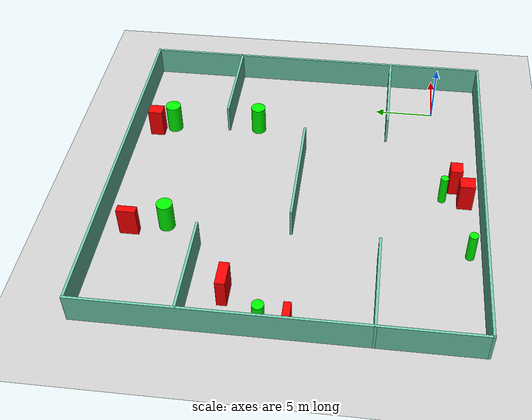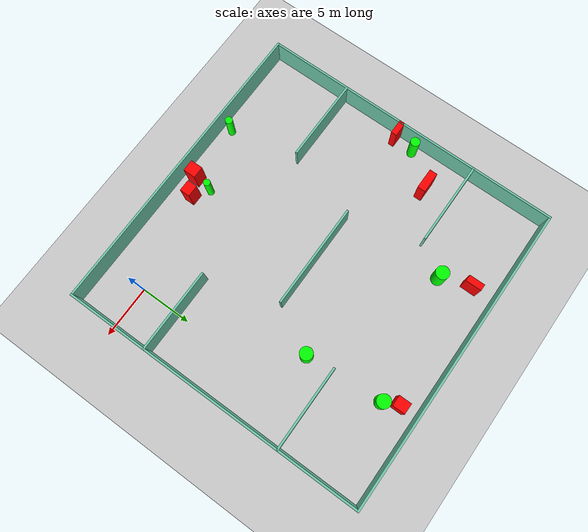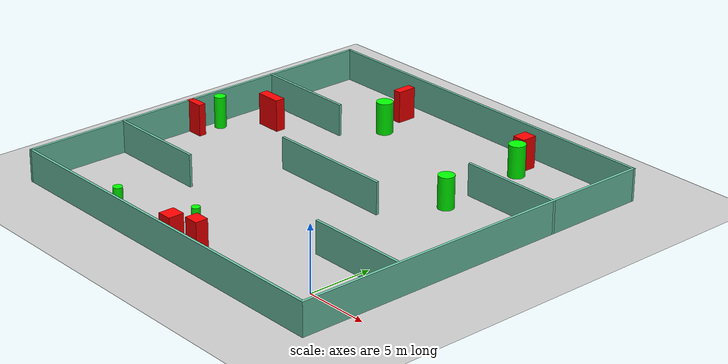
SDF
<sdf version="1.7">
 <world name="default">
  <light name="sun" type="directional">
   <pose>0 0 10 0 -0 0</pose>
   <diffuse>0.8 0.8 0.8 1</diffuse>
   <specular>0.2 0.2 0.2 1</specular>
   <attenuation>
    <range>1000</range>
    <constant>0.9</constant>
    <linear>0.01</linear>
    <quadratic>0.001</quadratic>
   </attenuation>
   <direction>-0.5 0.1 -0.9</direction>
   <spot><inner_angle>0</inner_angle><outer_angle>0</outer_angle><falloff>0</falloff></spot>
  </light>
  <model name="ground_plane">
   <static>1</static>
   <link name="link">
    <collision name="collision">
     <geometry><plane><normal>0 0 1</normal><size>100 100</size></plane></geometry>
     <surface>
      <contact><collide_bitmask>65535</collide_bitmask></contact>
      <friction><ode><mu>100</mu><mu2>50</mu2></ode></friction>
     </surface>
    </collision>
    <visual name="visual">
     <cast_shadows>0</cast_shadows>
     <geometry><plane><normal>0 0 1</normal><size>100 100</size></plane></geometry>
     <material>
      <script><uri>file://media/materials/scripts/gazebo.material</uri><name>Gazebo/Grey</name></script>
     </material>
    </visual>
   </link>
  </model>
  <gravity>0 0 -9.8</gravity>
  <magnetic_field>6e-06 2.3e-05 -4.2e-05</magnetic_field>
  <atmosphere type="adiabatic"/>
  <physics type="ode">
   <max_step_size>0.001</max_step_size>
   <real_time_factor>1</real_time_factor>
   <real_time_update_rate>1000</real_time_update_rate>
  </physics>
  <scene><ambient>0.4 0.4 0.4 1</ambient><background>0.7 0.7 0.7 1</background><shadows>1</shadows></scene>
  <spherical_coordinates>
   <surface_model>EARTH_WGS84</surface_model>
   <latitude_deg>0</latitude_deg>
   <longitude_deg>0</longitude_deg>
   <elevation>0</elevation>
   <heading_deg>0</heading_deg>
  </spherical_coordinates>
  <model name="my_base_walls">
   <link name="Wall_10">
    <collision name="Wall_10_Collision">
     <geometry><box><size>8.2 0.2 2.5</size></box></geometry>
     <pose>0 0 1.25 0 -0 0</pose>
    </collision>
    <visual name="Wall_10_Visual">
     <pose>0 0 1.25 0 -0 0</pose>
     <geometry><box><size>8.2 0.2 2.5</size></box></geometry>
     <material>
      <script><uri>file://media/materials/scripts/gazebo.material</uri><name>Gazebo/Grey</name></script>
      <ambient>0.435294 0.796078 0.67451 1</ambient>
     </material>
     <meta><layer>0</layer></meta>
    </visual>
    <pose>-11 -7 0 0 -0 0</pose>
   </link>
   <link name="Wall_12">
    <collision name="Wall_12_Collision">
     <geometry><box><size>8.2 0.2 2.5</size></box></geometry>
     <pose>0 0 1.25 0 -0 0</pose>
    </collision>
    <visual name="Wall_12_Visual">
     <pose>0 0 1.25 0 -0 0</pose>
     <geometry><box><size>8.2 0.2 2.5</size></box></geometry>
     <material>
      <script><uri>file://media/materials/scripts/gazebo.material</uri><name>Gazebo/Grey</name></script>
      <ambient>0.435294 0.796078 0.67451 1</ambient>
     </material>
     <meta><layer>0</layer></meta>
    </visual>
    <pose>-11 7 0 0 -0 0</pose>
   </link>
   <link name="Wall_14">
    <collision name="Wall_14_Collision">
     <geometry><box><size>8.2 0.2 2.5</size></box></geometry>
     <pose>0 0 1.25 0 -0 0</pose>
    </collision>
    <visual name="Wall_14_Visual">
     <pose>0 0 1.25 0 -0 0</pose>
     <geometry><box><size>8.2 0.2 2.5</size></box></geometry>
     <material>
      <script><uri>file://media/materials/scripts/gazebo.material</uri><name>Gazebo/Grey</name></script>
      <ambient>0.435294 0.796078 0.67451 1</ambient>
     </material>
     <meta><layer>0</layer></meta>
    </visual>
    <pose>11 7 0 0 -0 3.14159</pose>
   </link>
   <link name="Wall_16">
    <collision name="Wall_16_Collision">
     <geometry><box><size>10.2 0.2 2.5</size></box></geometry>
     <pose>0 0 1.25 0 -0 0</pose>
    </collision>
    <visual name="Wall_16_Visual">
     <pose>0 0 1.25 0 -0 0</pose>
     <geometry><box><size>10.2 0.2 2.5</size></box></geometry>
     <material>
      <script><uri>file://media/materials/scripts/gazebo.material</uri><name>Gazebo/Grey</name></script>
      <ambient>0.435294 0.796078 0.67451 1</ambient>
     </material>
     <meta><layer>0</layer></meta>
    </visual>
    <pose>0 0 0 0 -0 3.14159</pose>
   </link>
   <link name="Wall_2">
    <collision name="Wall_2_Collision">
     <geometry><box><size>30.2 0.2 2.5</size></box></geometry>
     <pose>0 0 1.25 0 -0 0</pose>
    </collision>
    <visual name="Wall_2_Visual">
     <pose>0 0 1.25 0 -0 0</pose>
     <geometry><box><size>30.2 0.2 2.5</size></box></geometry>
     <material>
      <script><uri>file://media/materials/scripts/gazebo.material</uri><name>Gazebo/Grey</name></script>
      <ambient>0.435294 0.796078 0.67451 1</ambient>
     </material>
     <meta><layer>0</layer></meta>
    </visual>
    <pose>0 -15 0 0 -0 3.14159</pose>
   </link>
   <link name="Wall_3">
    <collision name="Wall_3_Collision">
     <geometry><box><size>30.2 0.2 2.5</size></box></geometry>
     <pose>0 0 1.25 0 -0 0</pose>
    </collision>
    <visual name="Wall_3_Visual">
     <pose>0 0 1.25 0 -0 0</pose>
     <geometry><box><size>30.2 0.2 2.5</size></box></geometry>
     <material>
      <script><uri>file://media/materials/scripts/gazebo.material</uri><name>Gazebo/Grey</name></script>
      <ambient>0.435294 0.796078 0.67451 1</ambient>
     </material>
     <meta><layer>0</layer></meta>
    </visual>
    <pose>-15 0 0 0 -0 1.5708</pose>
   </link>
   <link name="Wall_4">
    <collision name="Wall_4_Collision">
     <geometry><box><size>30.2 0.2 2.5</size></box></geometry>
     <pose>0 0 1.25 0 -0 0</pose>
    </collision>
    <visual name="Wall_4_Visual">
     <pose>0 0 1.25 0 -0 0</pose>
     <geometry><box><size>30.2 0.2 2.5</size></box></geometry>
     <material>
      <script><uri>file://media/materials/scripts/gazebo.material</uri><name>Gazebo/Grey</name></script>
      <ambient>0.435294 0.796078 0.67451 1</ambient>
     </material>
     <meta><layer>0</layer></meta>
    </visual>
    <pose>0 15 0 0 -0 0</pose>
   </link>
   <link name="Wall_6">
    <collision name="Wall_6_Collision">
     <geometry><box><size>30.2 0.2 2.5</size></box></geometry>
     <pose>0 0 1.25 0 -0 0</pose>
    </collision>
    <visual name="Wall_6_Visual">
     <pose>0 0 1.25 0 -0 0</pose>
     <geometry><box><size>30.2 0.2 2.5</size></box></geometry>
     <material>
      <script><uri>file://media/materials/scripts/gazebo.material</uri><name>Gazebo/Grey</name></script>
      <ambient>0.435294 0.796078 0.67451 1</ambient>
     </material>
     <meta><layer>0</layer></meta>
    </visual>
    <pose>15 0 0 0 -0 1.5708</pose>
   </link>
   <link name="Wall_8">
    <collision name="Wall_8_Collision">
     <geometry><box><size>8.2 0.2 2.5</size></box></geometry>
     <pose>0 0 1.25 0 -0 0</pose>
    </collision>
    <visual name="Wall_8_Visual">
     <pose>0 0 1.25 0 -0 0</pose>
     <geometry><box><size>8.2 0.2 2.5</size></box></geometry>
     <material>
      <script><uri>file://media/materials/scripts/gazebo.material</uri><name>Gazebo/Grey</name></script>
      <ambient>0.435294 0.796078 0.67451 1</ambient>
     </material>
     <meta><layer>0</layer></meta>
    </visual>
    <pose>11 -7 0 0 -0 3.14159</pose>
   </link>
   <static>1</static>
   <pose>-11 11 0 0 -0 0</pose>
  </model>
  <model name="cylinder1">
   <static>1</static>
   <link name="link">
    <inertial>
     <mass>1</mass>
     <inertia><ixx>0.5</ixx><ixy>0</ixy><ixz>0</ixz><iyy>0.5</iyy><iyz>0</iyz><izz>1</izz></inertia>
    </inertial>
    <collision name="collision">
     <geometry><cylinder><radius>0.6142097254028575</radius><length>2.5</length></cylinder></geometry>
    </collision>
    <visual name="visual">
     <geometry><cylinder><radius>0.6142097254028575</radius><length>2.5</length></cylinder></geometry>
     <material>
      <ambient>0 1 0 1</ambient>
      <diffuse>0 1 0 1</diffuse>
      <specular>0.1 0.1 0.1 1</specular>
      <emissive>0 0 0 0</emissive>
     </material>
    </visual>
   </link>
   <pose>-3.671840990954397 15.384343778169125 1.25 0 0 0</pose>
  </model>
  <model name="cylinder2">
   <static>1</static>
   <link name="link">
    <inertial>
     <mass>1</mass>
     <inertia><ixx>0.5</ixx><ixy>0</ixy><ixz>0</ixz><iyy>0.5</iyy><iyz>0</iyz><izz>1</izz></inertia>
    </inertial>
    <collision name="collision">
     <geometry><cylinder><radius>0.6430790377499851</radius><length>2.5</length></cylinder></geometry>
    </collision>
    <visual name="visual">
     <geometry><cylinder><radius>0.6430790377499851</radius><length>2.5</length></cylinder></geometry>
     <material>
      <ambient>0 1 0 1</ambient>
      <diffuse>0 1 0 1</diffuse>
      <specular>0.1 0.1 0.1 1</specular>
      <emissive>0 0 0 0</emissive>
     </material>
    </visual>
   </link>
   <pose>-4.221877090666476 22.88683468147169 1.25 0 0 0</pose>
  </model>
  <model name="cylinder3">
   <static>1</static>
   <link name="link">
    <inertial>
     <mass>1</mass>
     <inertia><ixx>0.5</ixx><ixy>0</ixy><ixz>0</ixz><iyy>0.5</iyy><iyz>0</iyz><izz>1</izz></inertia>
    </inertial>
    <collision name="collision">
     <geometry><cylinder><radius>0.6416819682647442</radius><length>2.5</length></cylinder></geometry>
    </collision>
    <visual name="visual">
     <geometry><cylinder><radius>0.6416819682647442</radius><length>2.5</length></cylinder></geometry>
     <material>
      <ambient>0 1 0 1</ambient>
      <diffuse>0 1 0 1</diffuse>
      <specular>0.1 0.1 0.1 1</specular>
      <emissive>0 0 0 0</emissive>
     </material>
    </visual>
   </link>
   <pose>-16.22473776811331 20.942790859387134 1.25 0 0 0</pose>
  </model>
  <model name="cylinder4">
   <static>1</static>
   <link name="link">
    <inertial>
     <mass>1</mass>
     <inertia><ixx>0.5</ixx><ixy>0</ixy><ixz>0</ixz><iyy>0.5</iyy><iyz>0</iyz><izz>1</izz></inertia>
    </inertial>
    <collision name="collision">
     <geometry><cylinder><radius>0.3233621973479145</radius><length>2.5</length></cylinder></geometry>
    </collision>
    <visual name="visual">
     <geometry><cylinder><radius>0.3233621973479145</radius><length>2.5</length></cylinder></geometry>
     <material>
      <ambient>0 1 0 1</ambient>
      <diffuse>0 1 0 1</diffuse>
      <specular>0.1 0.1 0.1 1</specular>
      <emissive>0 0 0 0</emissive>
     </material>
    </visual>
   </link>
   <pose>-10.878777451734074 -0.8603987183188613 1.25 0 0 0</pose>
  </model>
  <model name="cylinder5">
   <static>1</static>
   <link name="link">
    <inertial>
     <mass>1</mass>
     <inertia><ixx>0.5</ixx><ixy>0</ixy><ixz>0</ixz><iyy>0.5</iyy><iyz>0</iyz><izz>1</izz></inertia>
    </inertial>
    <collision name="collision">
     <geometry><cylinder><radius>0.45204444729740456</radius><length>2.5</length></cylinder></geometry>
    </collision>
    <visual name="visual">
     <geometry><cylinder><radius>0.45204444729740456</radius><length>2.5</length></cylinder></geometry>
     <material>
      <ambient>0 1 0 1</ambient>
      <diffuse>0 1 0 1</diffuse>
      <specular>0.1 0.1 0.1 1</specular>
      <emissive>0 0 0 0</emissive>
     </material>
    </visual>
   </link>
   <pose>-25.121650122160744 12.252030200067455 1.25 0 0 0</pose>
  </model>
  <model name="cylinder6">
   <static>1</static>
   <link name="link">
    <inertial>
     <mass>1</mass>
     <inertia><ixx>0.5</ixx><ixy>0</ixy><ixz>0</ixz><iyy>0.5</iyy><iyz>0</iyz><izz>1</izz></inertia>
    </inertial>
    <collision name="collision">
     <geometry><cylinder><radius>0.3520923288753518</radius><length>2.5</length></cylinder></geometry>
    </collision>
    <visual name="visual">
     <geometry><cylinder><radius>0.3520923288753518</radius><length>2.5</length></cylinder></geometry>
     <material>
      <ambient>0 1 0 1</ambient>
      <diffuse>0 1 0 1</diffuse>
      <specular>0.1 0.1 0.1 1</specular>
      <emissive>0 0 0 0</emissive>
     </material>
    </visual>
   </link>
   <pose>-16.899193841031135 -2.972078327391416 1.25 0 0 0</pose>
  </model>
  <model name="box1">
   <static>1</static>
   <link name="link">
    <inertial>
     <mass>1</mass>
     <inertia><ixx>0.083</ixx><ixy>0</ixy><ixz>0</ixz><iyy>0.083</iyy><iyz>0</iyz><izz>0.083</izz></inertia>
    </inertial>
    <collision name="collision">
     <geometry><box><size>1.152893078303775 0.9942733991887492 2.5</size></box></geometry>
    </collision>
    <visual name="visual">
     <geometry><box><size>1.152893078303775 0.9942733991887492 2.5</size></box></geometry>
     <material>
      <ambient>1 0 0 1</ambient>
      <diffuse>1 0 0 1</diffuse>
      <specular>0.1 0.1 0.1 1</specular>
      <emissive>0 0 0 0</emissive>
     </material>
    </visual>
    <sensor name="my_contact" type="contact">
     <contact><collision>box_collision</collision><topic>__default_topic__</topic></contact>
    </sensor>
   </link>
   <pose>-9.491411776049263 -1.8545953662624988 1.25 0 0 0</pose>
  </model>
  <model name="box2">
   <static>1</static>
   <link name="link">
    <inertial>
     <mass>1</mass>
     <inertia><ixx>0.083</ixx><ixy>0</ixy><ixz>0</ixz><iyy>0.083</iyy><iyz>0</iyz><izz>0.083</izz></inertia>
    </inertial>
    <collision name="collision">
     <geometry><box><size>2.041134297168144 0.775993382496937 2.5</size></box></geometry>
    </collision>
    <visual name="visual">
     <geometry><box><size>2.041134297168144 0.775993382496937 2.5</size></box></geometry>
     <material>
      <ambient>1 0 0 1</ambient>
      <diffuse>1 0 0 1</diffuse>
      <specular>0.1 0.1 0.1 1</specular>
      <emissive>0 0 0 0</emissive>
     </material>
    </visual>
    <sensor name="my_contact" type="contact">
     <contact><collision>box_collision</collision><topic>__default_topic__</topic></contact>
    </sensor>
   </link>
   <pose>-22.597629303321654 15.220730206431448 1.25 0 0 0</pose>
  </model>
  <model name="box3">
   <static>1</static>
   <link name="link">
    <inertial>
     <mass>1</mass>
     <inertia><ixx>0.083</ixx><ixy>0</ixy><ixz>0</ixz><iyy>0.083</iyy><iyz>0</iyz><izz>0.083</izz></inertia>
    </inertial>
    <collision name="collision">
     <geometry><box><size>1.1365282565431318 1.2150950150691389 2.5</size></box></geometry>
    </collision>
    <visual name="visual">
     <geometry><box><size>1.1365282565431318 1.2150950150691389 2.5</size></box></geometry>
     <material>
      <ambient>1 0 0 1</ambient>
      <diffuse>1 0 0 1</diffuse>
      <specular>0.1 0.1 0.1 1</specular>
      <emissive>0 0 0 0</emissive>
     </material>
    </visual>
    <sensor name="my_contact" type="contact">
     <contact><collision>box_collision</collision><topic>__default_topic__</topic></contact>
    </sensor>
   </link>
   <pose>-11.182445580007492 -2.681471443122923 1.25 0 0 0</pose>
  </model>
  <model name="box4">
   <static>1</static>
   <link name="link">
    <inertial>
     <mass>1</mass>
     <inertia><ixx>0.083</ixx><ixy>0</ixy><ixz>0</ixz><iyy>0.083</iyy><iyz>0</iyz><izz>0.083</izz></inertia>
    </inertial>
    <collision name="collision">
     <geometry><box><size>0.6291987340789706 1.5347902825996955 2.5</size></box></geometry>
    </collision>
    <visual name="visual">
     <geometry><box><size>0.6291987340789706 1.5347902825996955 2.5</size></box></geometry>
     <material>
      <ambient>1 0 0 1</ambient>
      <diffuse>1 0 0 1</diffuse>
      <specular>0.1 0.1 0.1 1</specular>
      <emissive>0 0 0 0</emissive>
     </material>
    </visual>
    <sensor name="my_contact" type="contact">
     <contact><collision>box_collision</collision><topic>__default_topic__</topic></contact>
    </sensor>
   </link>
   <pose>-17.113462159245373 23.73711201146316 1.25 0 0 0</pose>
  </model>
  <model name="box5">
   <static>1</static>
   <link name="link">
    <inertial>
     <mass>1</mass>
     <inertia><ixx>0.083</ixx><ixy>0</ixy><ixz>0</ixz><iyy>0.083</iyy><iyz>0</iyz><izz>0.083</izz></inertia>
    </inertial>
    <collision name="collision">
     <geometry><box><size>1.0389883576047043 1.2133238003838271 2.5</size></box></geometry>
    </collision>
    <visual name="visual">
     <geometry><box><size>1.0389883576047043 1.2133238003838271 2.5</size></box></geometry>
     <material>
      <ambient>1 0 0 1</ambient>
      <diffuse>1 0 0 1</diffuse>
      <specular>0.1 0.1 0.1 1</specular>
      <emissive>0 0 0 0</emissive>
     </material>
    </visual>
    <sensor name="my_contact" type="contact">
     <contact><collision>box_collision</collision><topic>__default_topic__</topic></contact>
    </sensor>
   </link>
   <pose>-4.87341241468468 24.265028204654595 1.25 0 0 0</pose>
  </model>
  <model name="box6">
   <static>1</static>
   <link name="link">
    <inertial>
     <mass>1</mass>
     <inertia><ixx>0.083</ixx><ixy>0</ixy><ixz>0</ixz><iyy>0.083</iyy><iyz>0</iyz><izz>0.083</izz></inertia>
    </inertial>
    <collision name="collision">
     <geometry><box><size>1.4507015496744997 0.5692331170846852 2.5</size></box></geometry>
    </collision>
    <visual name="visual">
     <geometry><box><size>1.4507015496744997 0.5692331170846852 2.5</size></box></geometry>
     <material>
      <ambient>1 0 0 1</ambient>
      <diffuse>1 0 0 1</diffuse>
      <specular>0.1 0.1 0.1 1</specular>
      <emissive>0 0 0 0</emissive>
     </material>
    </visual>
    <sensor name="my_contact" type="contact">
     <contact><collision>box_collision</collision><topic>__default_topic__</topic></contact>
    </sensor>
   </link>
   <pose>-25.369875265898962 10.19606533531013 1.25 0 0 0</pose>
  </model>
 </world>
</sdf>
